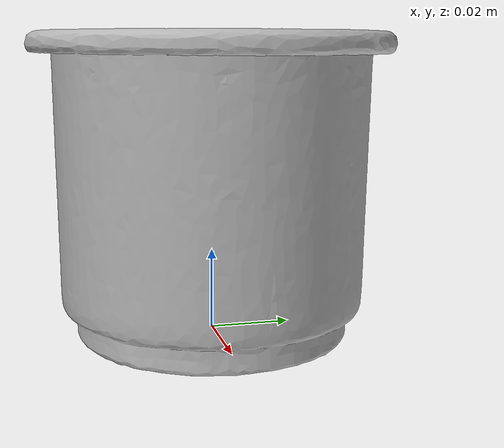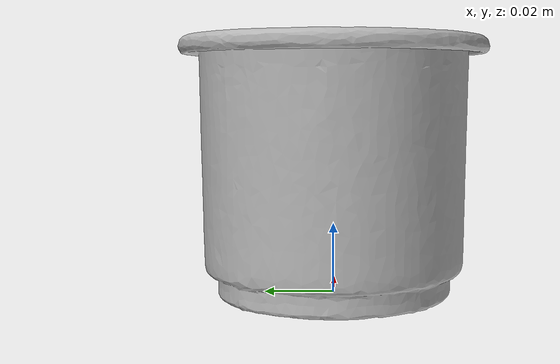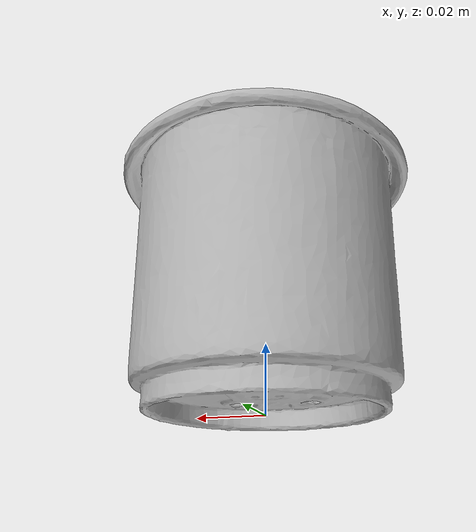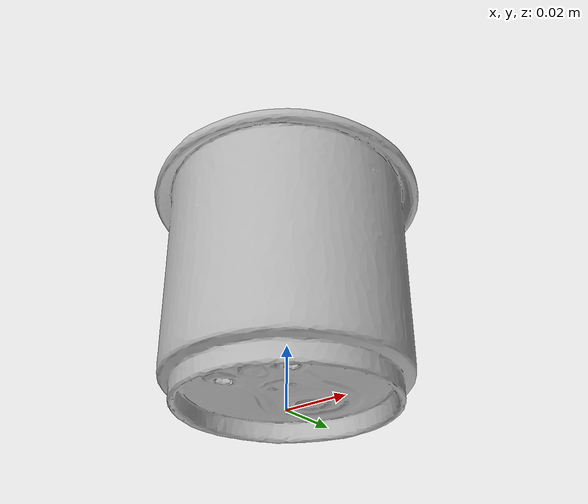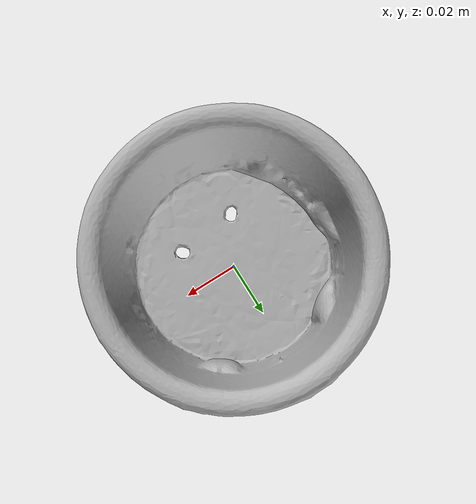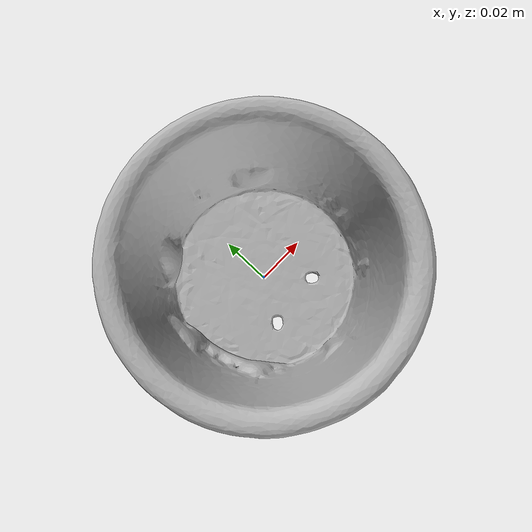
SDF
<?xml version="1.0" ?>
<sdf version='1.8'>
  <model name='ycb_065-g_cups'>
    <link name='body'>
      <inertial>
        <mass>0.019</mass>
        <pose>-0.00140639798 5.58103329e-05 0.0354693534 0 0 0</pose>
        <inertia>
          <ixx>2.21435945508e-05</ixx>
          <ixy>-1.0846492586e-07</ixy>
          <ixz>-4.59909285305e-07</ixz>
          <iyy>2.23081634604e-05</iyy>
          <iyz>9.53237263038e-08</iyz>
          <izz>2.35739334182e-05</izz>
        </inertia>
      </inertial>
      <visual name='ycb_065-g_cups_visual'>
        <pose>-0.014341 -0.028039 0.000595 0 0 0</pose>
        <geometry>
          <mesh>
            <uri>model://ycb_065-g_cups/meshes/textured.dae</uri>
          </mesh>
        </geometry>
      </visual>
      <collision name='ycb_065-g_cups_collision'>
        <pose>-0.014341 -0.028039 0.000595 0 0 0</pose>
        <geometry>
          <mesh>
            <uri>model://ycb_065-g_cups/meshes/nontextured.stl</uri>
          </mesh>
        </geometry>
        <max_contacts>10</max_contacts>
        <surface>
          <contact>
            <ode>
              <kp>1e15</kp>
              <kd>1e13</kd>
            </ode>
          </contact>
        </surface>
      </collision>
    </link>
  </model>
</sdf>
